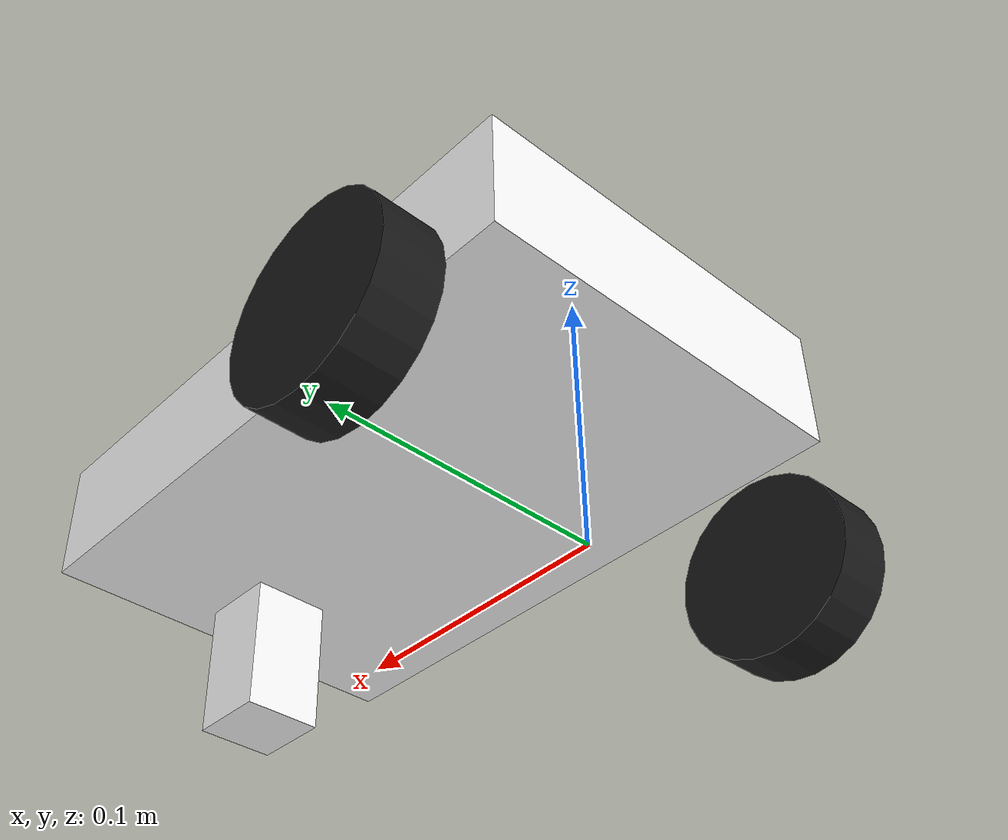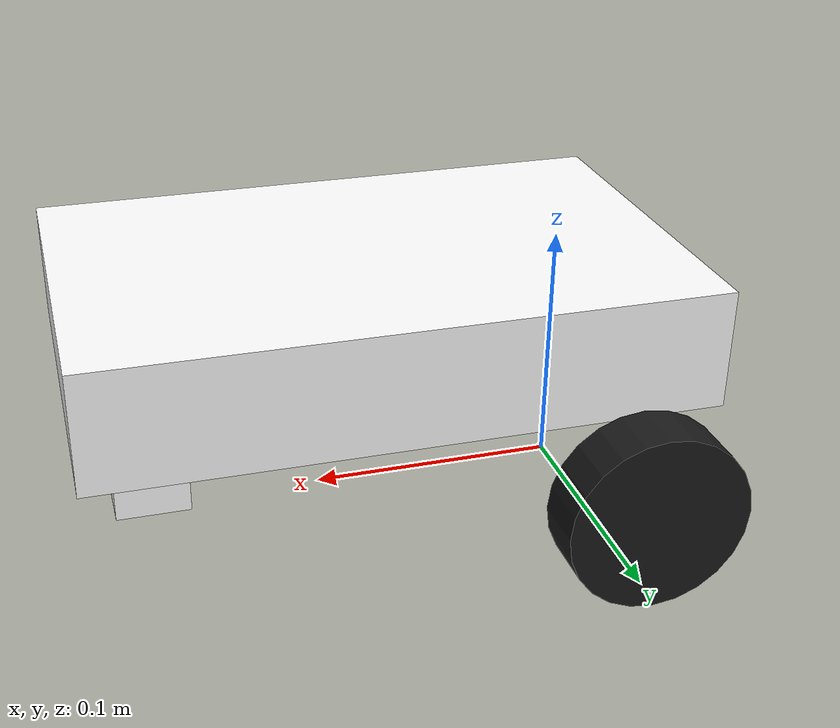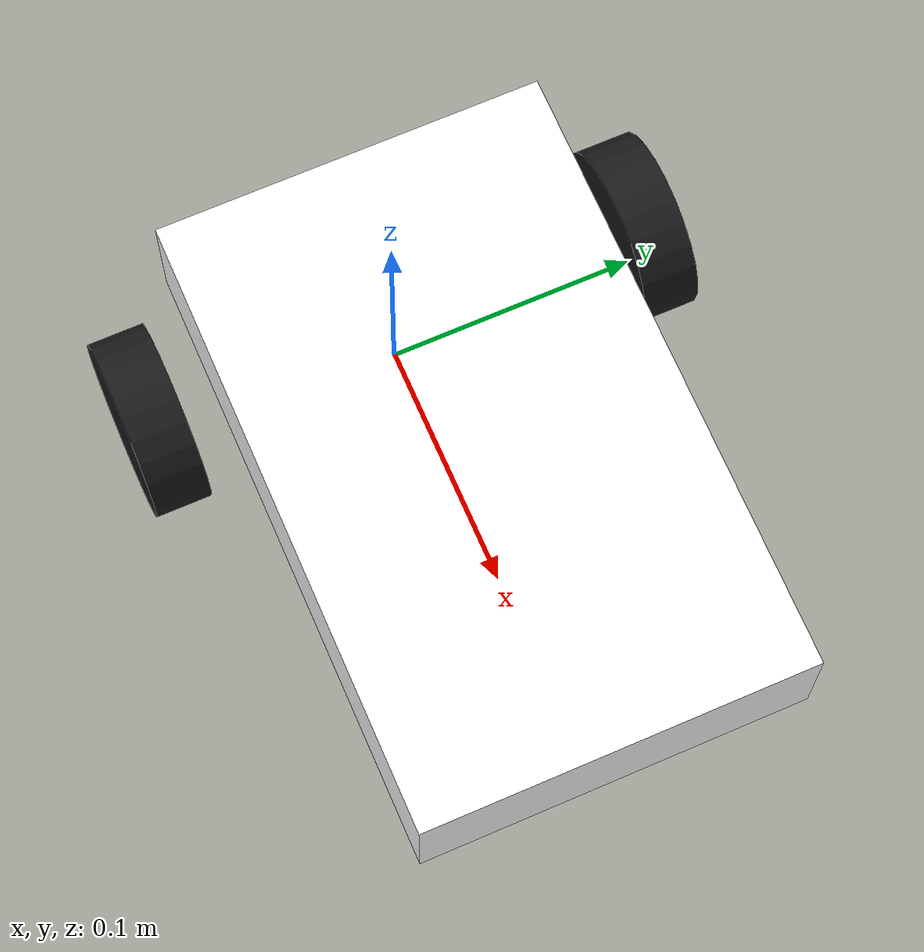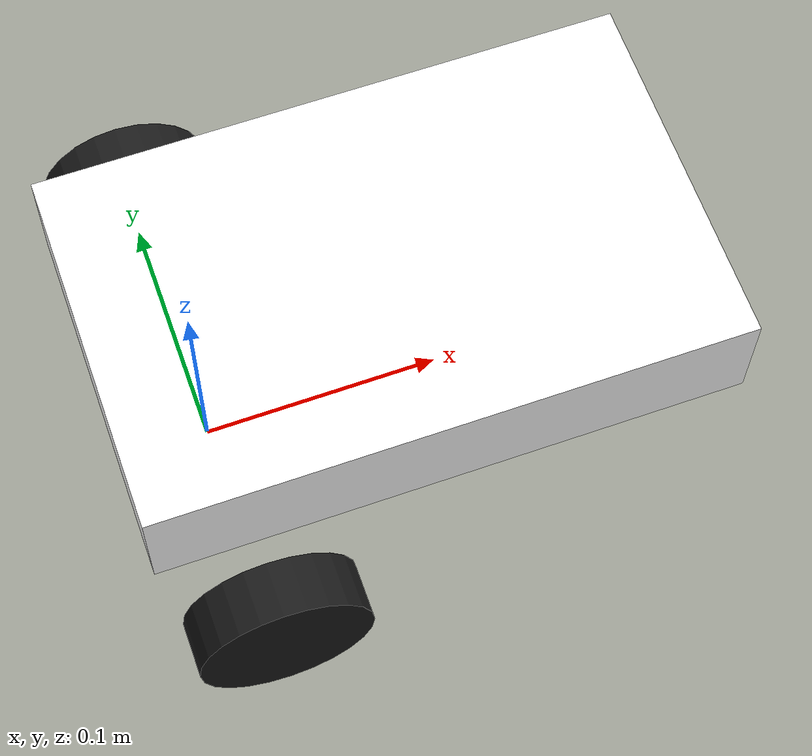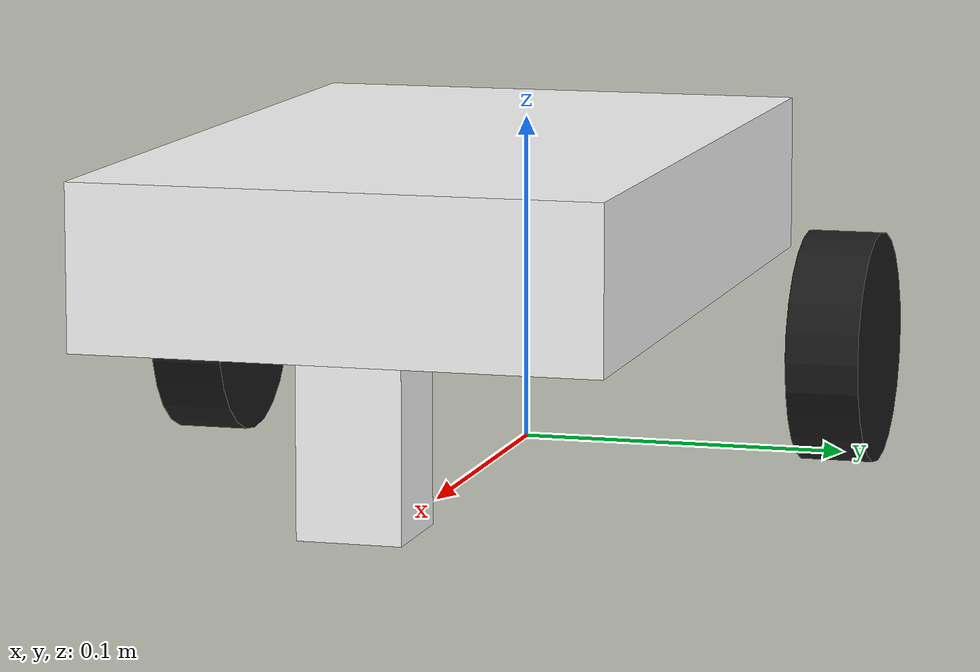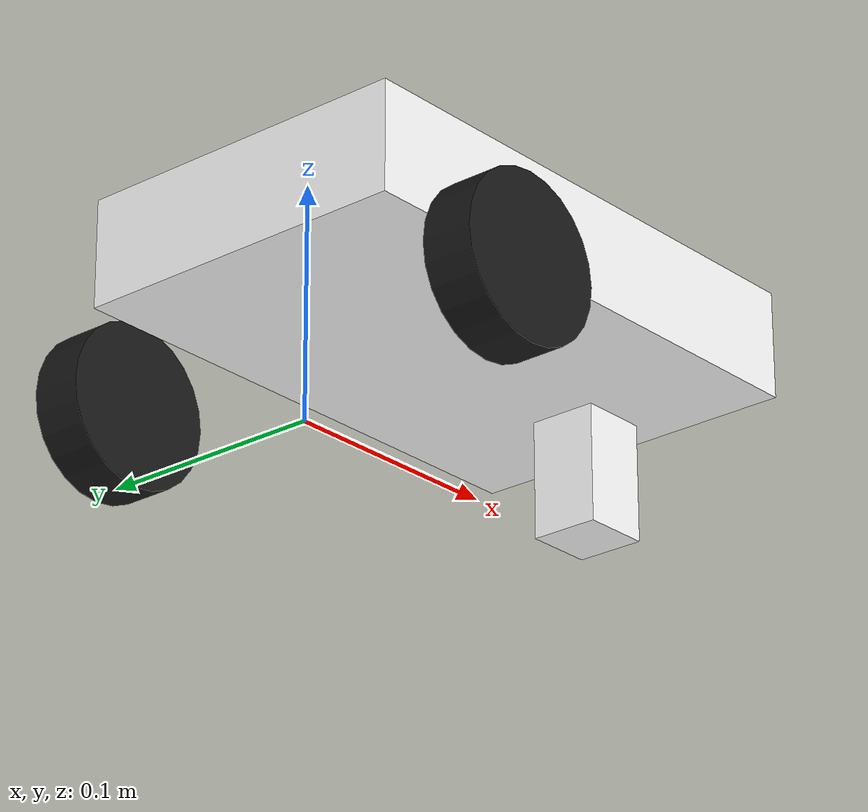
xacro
<?xml version="1.0"?>
<robot xmlns:xacro="http://www.ros.org/wiki/xacro" name="zemo">

    <xacro:include filename="$(find zemo_rover)/urdf/zemo_macro.xacro"/>

    <link name="zemo_frame"/>

    <link name="zemo_chassis">
        <visual>
            <geometry>
                <box size="${chassis_len} ${chassis_wid} ${chassis_th}"/>
            </geometry>
            <material name="white">
                <color rgba="1 1 1 1"/>
            </material>
        </visual>
    </link>

    <joint name="zemo_joint" type="fixed">
        <parent link="zemo_frame"/>
        <child link="zemo_chassis"/>
        <origin xyz="0.08 0.0 0.08" rpy="0.0 0.0 0.0"/>
    </joint>

    <link name="right_wheel">
        <visual>
            <geometry>
                <cylinder radius="${wheel_r}" length="${wheel_th}"/>
            </geometry>
            <material name="black">
                <color rgba="0.1 0.1 0.1 1"/>
            </material>
        </visual>
    </link>

    <joint name="right_wheel_link" type="fixed">
        <parent link="zemo_chassis"/>
        <child link="right_wheel"/>
        <origin xyz="-0.08 -0.1 -0.047" rpy="1.5707 0.0 0.0"/>
    </joint>

    <link name="left_wheel">
        <visual>
            <geometry>
                <cylinder radius="${wheel_r}" length="${wheel_th}"/>
            </geometry>
            <material name="black">
                <color rgba="0.1 0.1 0.1 1"/>
            </material>
        </visual>
    </link>

    <joint name="left_wheel_link" type="fixed">
        <parent link="zemo_chassis"/>
        <child link="left_wheel"/>
        <origin xyz="-0.08 0.1 -0.047" rpy="1.5707 0.0 0.0"/>
    </joint>

    <link name="caster_wheel">
        <visual>
            <geometry>
                <box size="${caster_len} ${caster_wid} ${caster_th}"/>
            </geometry>
            <material name="white">
                <color rgba="1 1 1 1"/>
            </material>
        </visual>
    </link>

    <joint name="caster_wheel_link" type="fixed">
        <parent link="zemo_chassis"/>
        <child link="caster_wheel"/>
        <origin xyz="0.09 0.0 -0.04" rpy="0.0 0.0 0.0"/>
    </joint>

</robot>

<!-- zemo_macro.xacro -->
<robot xmlns:xacro="http://www.ros.org/wiki/xacro" name="zemo">
    <xacro:property name="chassis_len" value="0.24"/>
    <xacro:property name="chassis_wid" value="0.15"/>
    <xacro:property name="chassis_th" value="0.047"/>
    <xacro:property name="wheel_r" value="0.035"/>
    <xacro:property name="wheel_th" value="0.022"/>
    <xacro:property name="caster_len" value="0.03"/>
    <xacro:property name="caster_wid" value="0.03"/>
    <xacro:property name="caster_th" value="0.07"/>
    <xacro:property name="gap_x" value="0.04"/>

</robot>
